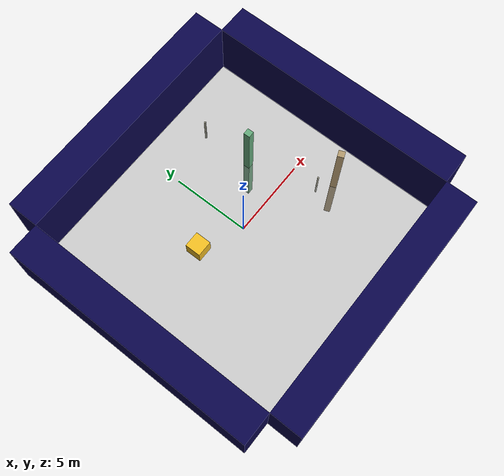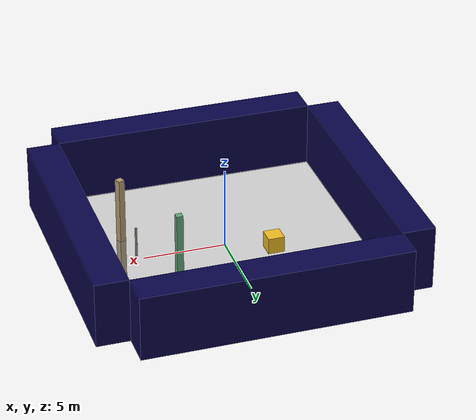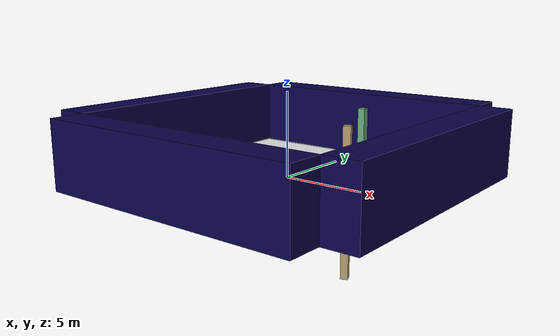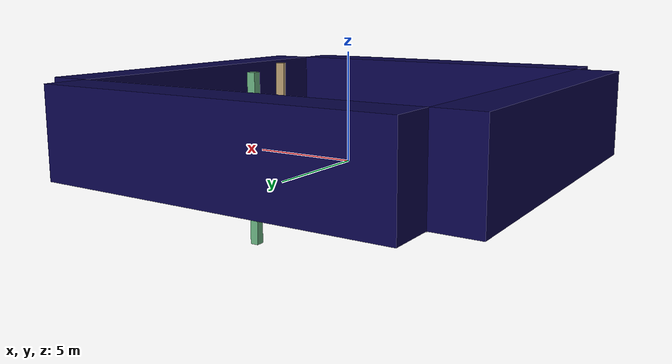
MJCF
<mujoco model="unnamed_model">
  <default>
    <default class="/" />
    <default class="border/" />
    <default class="border_1/" />
    <default class="border_2/" />
    <default class="border_3/" />
    <default class="light/" />
    <default class="agent/" />
    <default class="stone0/" />
    <default class="stone1/" />
    <default class="apple/" />
    <default class="apple_1/" />
  </default>
  <worldbody>
    <body name="border/">
      <body name="border/border" pos="0 9 2">
        <geom name="border/border_geom" class="border/" type="box" size="8.0 1.0 2.0" rgba="0.035 0.016 0.29 1.0" />
      </body>
    </body>
    <body name="border_1/">
      <body name="border_1/border" pos="0 -9 2">
        <geom name="border_1/border_geom" class="border_1/" type="box" size="8.0 1.0 2.0" rgba="0.035 0.016 0.29 1.0" />
      </body>
    </body>
    <body name="border_2/">
      <body name="border_2/border" pos="9 0 2">
        <geom name="border_2/border_geom" class="border_2/" type="box" size="1.0 8.0 2.0" rgba="0.035 0.016 0.29 1.0" />
      </body>
    </body>
    <body name="border_3/">
      <body name="border_3/border" pos="-9 0 2">
        <geom name="border_3/border_geom" class="border_3/" type="box" size="1.0 8.0 2.0" rgba="0.035 0.016 0.29 1.0" />
      </body>
    </body>
    <body name="light/">
      <body name="light/light" pos="0 0 15">
        <geom name="light/light_geom" class="light/" size="0.5" rgba="1.0 1.0 1.0 0.0" />
        <light name="light//unnamed_light_0" class="light/" />
      </body>
    </body>
    <body euler="0 0 270.36419657409249" name="agent/" pos="-2.6470000000000002 1.2500999999999998 0.5">
      <joint name="agent/boxagent_freeJoint/" class="/" type="free" />
      <body name="agent/agent" pos="0 0 0" euler="0 0 0">
        <geom name="agent/boxagent_geom" class="agent/" type="box" size="0.5 0.5 0.5" rgba="0.949 0.7451 0.1333 1.0" euler="0 0 0" />
        <camera name="agent/boxagent_camera" class="agent/" pos="0 -0.90000000000000002 0" euler="90 0 0" />
      </body>
    </body>
    <body name="stone0/">
      <body name="stone0/stone0" pos="4.9821499999999999 -1.7142999999999997 0.10000000000000001" euler="0 0 113.97633769875318">
        <geom name="stone0/stone_geom" class="stone0/" type="box" size="0.05 0.05 1.0" rgba="0.6470588235294118 0.6392156862745098 0.5686274509803921 1.0" />
      </body>
    </body>
    <body name="stone1/">
      <body name="stone1/stone1" pos="5.6975499999999997 -2.4725999999999999 0.10000000000000001" euler="0 0 21.961162792499977">
        <geom name="stone1/stone_geom" class="stone1/" type="box" size="0.2 0.2 4.0" rgba="0.6980392156862745 0.6 0.43137254901960786 1.0" />
      </body>
    </body>
    <body name="apple/">
      <body name="apple/apple" pos="3.5156499999999999 2.4153000000000002 0.10000000000000001" euler="0 0 1.7320389206411733">
        <geom name="apple/apple_geom" class="apple/" type="box" size="0.2 0.2 4.0" rgba="0.396078431372549 0.6705882352941176 0.48627450980392156 1.0" />
      </body>
    </body>
    <body name="apple_1/">
      <body name="apple_1/apple" pos="3.6689500000000002 5.9220000000000006 0.10000000000000001" euler="0 0 112.12313992824039">
        <geom name="apple_1/apple_geom" class="apple_1/" type="box" size="0.05 0.05 1.0" rgba="0.6470588235294118 0.6392156862745098 0.5686274509803921 1.0" />
      </body>
    </body>
    <geom name="base_plane" class="/" type="plane" size="8 8 0.10000000000000001" />
  </worldbody>
</mujoco>
